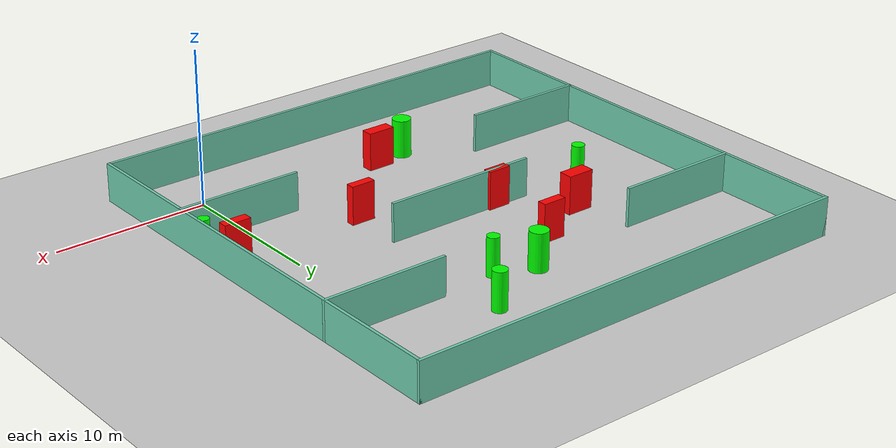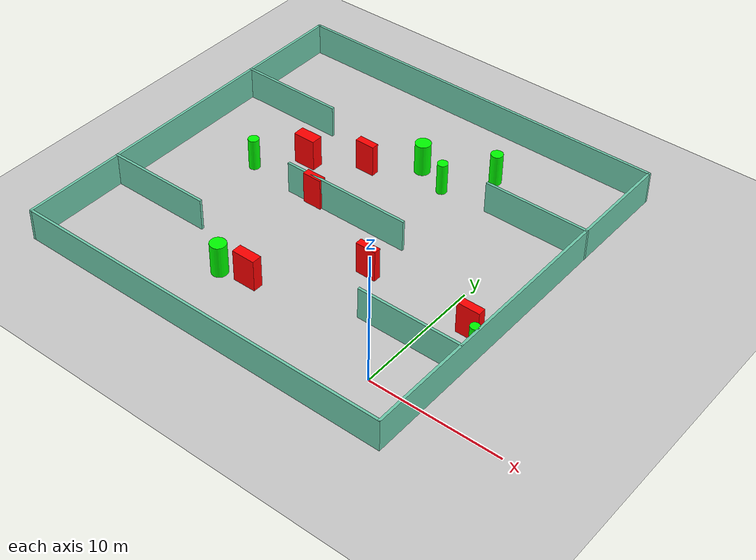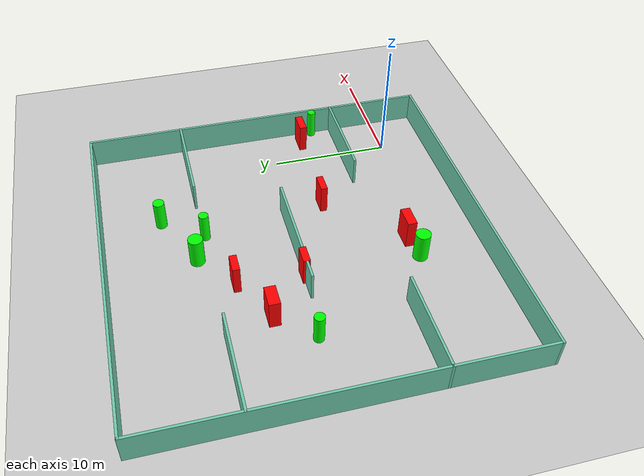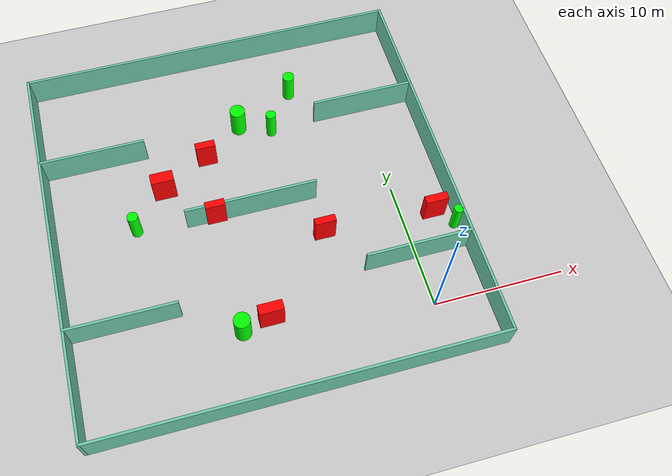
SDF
<sdf version="1.7">
 <world name="default">
  <light name="sun" type="directional">
   <pose>0 0 10 0 -0 0</pose>
   <diffuse>0.8 0.8 0.8 1</diffuse>
   <specular>0.2 0.2 0.2 1</specular>
   <attenuation>
    <range>1000</range>
    <constant>0.9</constant>
    <linear>0.01</linear>
    <quadratic>0.001</quadratic>
   </attenuation>
   <direction>-0.5 0.1 -0.9</direction>
   <spot><inner_angle>0</inner_angle><outer_angle>0</outer_angle><falloff>0</falloff></spot>
  </light>
  <model name="ground_plane">
   <static>1</static>
   <link name="link">
    <collision name="collision">
     <geometry><plane><normal>0 0 1</normal><size>100 100</size></plane></geometry>
     <surface>
      <contact><collide_bitmask>65535</collide_bitmask></contact>
      <friction><ode><mu>100</mu><mu2>50</mu2></ode></friction>
     </surface>
    </collision>
    <visual name="visual">
     <cast_shadows>0</cast_shadows>
     <geometry><plane><normal>0 0 1</normal><size>100 100</size></plane></geometry>
     <material>
      <script><uri>file://media/materials/scripts/gazebo.material</uri><name>Gazebo/Grey</name></script>
     </material>
    </visual>
   </link>
  </model>
  <gravity>0 0 -9.8</gravity>
  <magnetic_field>6e-06 2.3e-05 -4.2e-05</magnetic_field>
  <atmosphere type="adiabatic"/>
  <physics type="ode">
   <max_step_size>0.001</max_step_size>
   <real_time_factor>1</real_time_factor>
   <real_time_update_rate>1000</real_time_update_rate>
  </physics>
  <scene><ambient>0.4 0.4 0.4 1</ambient><background>0.7 0.7 0.7 1</background><shadows>1</shadows></scene>
  <spherical_coordinates>
   <surface_model>EARTH_WGS84</surface_model>
   <latitude_deg>0</latitude_deg>
   <longitude_deg>0</longitude_deg>
   <elevation>0</elevation>
   <heading_deg>0</heading_deg>
  </spherical_coordinates>
  <model name="my_base_walls">
   <link name="Wall_10">
    <collision name="Wall_10_Collision">
     <geometry><box><size>8.2 0.2 2.5</size></box></geometry>
     <pose>0 0 1.25 0 -0 0</pose>
    </collision>
    <visual name="Wall_10_Visual">
     <pose>0 0 1.25 0 -0 0</pose>
     <geometry><box><size>8.2 0.2 2.5</size></box></geometry>
     <material>
      <script><uri>file://media/materials/scripts/gazebo.material</uri><name>Gazebo/Grey</name></script>
      <ambient>0.435294 0.796078 0.67451 1</ambient>
     </material>
     <meta><layer>0</layer></meta>
    </visual>
    <pose>-11 -7 0 0 -0 0</pose>
   </link>
   <link name="Wall_12">
    <collision name="Wall_12_Collision">
     <geometry><box><size>8.2 0.2 2.5</size></box></geometry>
     <pose>0 0 1.25 0 -0 0</pose>
    </collision>
    <visual name="Wall_12_Visual">
     <pose>0 0 1.25 0 -0 0</pose>
     <geometry><box><size>8.2 0.2 2.5</size></box></geometry>
     <material>
      <script><uri>file://media/materials/scripts/gazebo.material</uri><name>Gazebo/Grey</name></script>
      <ambient>0.435294 0.796078 0.67451 1</ambient>
     </material>
     <meta><layer>0</layer></meta>
    </visual>
    <pose>-11 7 0 0 -0 0</pose>
   </link>
   <link name="Wall_14">
    <collision name="Wall_14_Collision">
     <geometry><box><size>8.2 0.2 2.5</size></box></geometry>
     <pose>0 0 1.25 0 -0 0</pose>
    </collision>
    <visual name="Wall_14_Visual">
     <pose>0 0 1.25 0 -0 0</pose>
     <geometry><box><size>8.2 0.2 2.5</size></box></geometry>
     <material>
      <script><uri>file://media/materials/scripts/gazebo.material</uri><name>Gazebo/Grey</name></script>
      <ambient>0.435294 0.796078 0.67451 1</ambient>
     </material>
     <meta><layer>0</layer></meta>
    </visual>
    <pose>11 7 0 0 -0 3.14159</pose>
   </link>
   <link name="Wall_16">
    <collision name="Wall_16_Collision">
     <geometry><box><size>10.2 0.2 2.5</size></box></geometry>
     <pose>0 0 1.25 0 -0 0</pose>
    </collision>
    <visual name="Wall_16_Visual">
     <pose>0 0 1.25 0 -0 0</pose>
     <geometry><box><size>10.2 0.2 2.5</size></box></geometry>
     <material>
      <script><uri>file://media/materials/scripts/gazebo.material</uri><name>Gazebo/Grey</name></script>
      <ambient>0.435294 0.796078 0.67451 1</ambient>
     </material>
     <meta><layer>0</layer></meta>
    </visual>
    <pose>0 0 0 0 -0 3.14159</pose>
   </link>
   <link name="Wall_2">
    <collision name="Wall_2_Collision">
     <geometry><box><size>30.2 0.2 2.5</size></box></geometry>
     <pose>0 0 1.25 0 -0 0</pose>
    </collision>
    <visual name="Wall_2_Visual">
     <pose>0 0 1.25 0 -0 0</pose>
     <geometry><box><size>30.2 0.2 2.5</size></box></geometry>
     <material>
      <script><uri>file://media/materials/scripts/gazebo.material</uri><name>Gazebo/Grey</name></script>
      <ambient>0.435294 0.796078 0.67451 1</ambient>
     </material>
     <meta><layer>0</layer></meta>
    </visual>
    <pose>0 -15 0 0 -0 3.14159</pose>
   </link>
   <link name="Wall_3">
    <collision name="Wall_3_Collision">
     <geometry><box><size>30.2 0.2 2.5</size></box></geometry>
     <pose>0 0 1.25 0 -0 0</pose>
    </collision>
    <visual name="Wall_3_Visual">
     <pose>0 0 1.25 0 -0 0</pose>
     <geometry><box><size>30.2 0.2 2.5</size></box></geometry>
     <material>
      <script><uri>file://media/materials/scripts/gazebo.material</uri><name>Gazebo/Grey</name></script>
      <ambient>0.435294 0.796078 0.67451 1</ambient>
     </material>
     <meta><layer>0</layer></meta>
    </visual>
    <pose>-15 0 0 0 -0 1.5708</pose>
   </link>
   <link name="Wall_4">
    <collision name="Wall_4_Collision">
     <geometry><box><size>30.2 0.2 2.5</size></box></geometry>
     <pose>0 0 1.25 0 -0 0</pose>
    </collision>
    <visual name="Wall_4_Visual">
     <pose>0 0 1.25 0 -0 0</pose>
     <geometry><box><size>30.2 0.2 2.5</size></box></geometry>
     <material>
      <script><uri>file://media/materials/scripts/gazebo.material</uri><name>Gazebo/Grey</name></script>
      <ambient>0.435294 0.796078 0.67451 1</ambient>
     </material>
     <meta><layer>0</layer></meta>
    </visual>
    <pose>0 15 0 0 -0 0</pose>
   </link>
   <link name="Wall_6">
    <collision name="Wall_6_Collision">
     <geometry><box><size>30.2 0.2 2.5</size></box></geometry>
     <pose>0 0 1.25 0 -0 0</pose>
    </collision>
    <visual name="Wall_6_Visual">
     <pose>0 0 1.25 0 -0 0</pose>
     <geometry><box><size>30.2 0.2 2.5</size></box></geometry>
     <material>
      <script><uri>file://media/materials/scripts/gazebo.material</uri><name>Gazebo/Grey</name></script>
      <ambient>0.435294 0.796078 0.67451 1</ambient>
     </material>
     <meta><layer>0</layer></meta>
    </visual>
    <pose>15 0 0 0 -0 1.5708</pose>
   </link>
   <link name="Wall_8">
    <collision name="Wall_8_Collision">
     <geometry><box><size>8.2 0.2 2.5</size></box></geometry>
     <pose>0 0 1.25 0 -0 0</pose>
    </collision>
    <visual name="Wall_8_Visual">
     <pose>0 0 1.25 0 -0 0</pose>
     <geometry><box><size>8.2 0.2 2.5</size></box></geometry>
     <material>
      <script><uri>file://media/materials/scripts/gazebo.material</uri><name>Gazebo/Grey</name></script>
      <ambient>0.435294 0.796078 0.67451 1</ambient>
     </material>
     <meta><layer>0</layer></meta>
    </visual>
    <pose>11 -7 0 0 -0 3.14159</pose>
   </link>
   <static>1</static>
   <pose>-11 11 0 0 -0 0</pose>
  </model>
  <model name="cylinder1">
   <static>1</static>
   <link name="link">
    <inertial>
     <mass>1</mass>
     <inertia><ixx>0.5</ixx><ixy>0</ixy><ixz>0</ixz><iyy>0.5</iyy><iyz>0</iyz><izz>1</izz></inertia>
    </inertial>
    <collision name="collision">
     <geometry><cylinder><radius>0.4158542489716761</radius><length>2.5</length></cylinder></geometry>
    </collision>
    <visual name="visual">
     <geometry><cylinder><radius>0.4158542489716761</radius><length>2.5</length></cylinder></geometry>
     <material>
      <ambient>0 1 0 1</ambient>
      <diffuse>0 1 0 1</diffuse>
      <specular>0.1 0.1 0.1 1</specular>
      <emissive>0 0 0 0</emissive>
     </material>
    </visual>
   </link>
   <pose>-19.891511363780758 11.50236141733927 1.25 0 0 0</pose>
  </model>
  <model name="cylinder2">
   <static>1</static>
   <link name="link">
    <inertial>
     <mass>1</mass>
     <inertia><ixx>0.5</ixx><ixy>0</ixy><ixz>0</ixz><iyy>0.5</iyy><iyz>0</iyz><izz>1</izz></inertia>
    </inertial>
    <collision name="collision">
     <geometry><cylinder><radius>0.6104092179179579</radius><length>2.5</length></cylinder></geometry>
    </collision>
    <visual name="visual">
     <geometry><cylinder><radius>0.6104092179179579</radius><length>2.5</length></cylinder></geometry>
     <material>
      <ambient>0 1 0 1</ambient>
      <diffuse>0 1 0 1</diffuse>
      <specular>0.1 0.1 0.1 1</specular>
      <emissive>0 0 0 0</emissive>
     </material>
    </visual>
   </link>
   <pose>-13.95493690057162 1.5053305153618286 1.25 0 0 0</pose>
  </model>
  <model name="cylinder3">
   <static>1</static>
   <link name="link">
    <inertial>
     <mass>1</mass>
     <inertia><ixx>0.5</ixx><ixy>0</ixy><ixz>0</ixz><iyy>0.5</iyy><iyz>0</iyz><izz>1</izz></inertia>
    </inertial>
    <collision name="collision">
     <geometry><cylinder><radius>0.4628122217576789</radius><length>2.5</length></cylinder></geometry>
    </collision>
    <visual name="visual">
     <geometry><cylinder><radius>0.4628122217576789</radius><length>2.5</length></cylinder></geometry>
     <material>
      <ambient>0 1 0 1</ambient>
      <diffuse>0 1 0 1</diffuse>
      <specular>0.1 0.1 0.1 1</specular>
      <emissive>0 0 0 0</emissive>
     </material>
    </visual>
   </link>
   <pose>-5.404599270384672 21.095572354652166 1.25 0 0 0</pose>
  </model>
  <model name="cylinder4">
   <static>1</static>
   <link name="link">
    <inertial>
     <mass>1</mass>
     <inertia><ixx>0.5</ixx><ixy>0</ixy><ixz>0</ixz><iyy>0.5</iyy><iyz>0</iyz><izz>1</izz></inertia>
    </inertial>
    <collision name="collision">
     <geometry><cylinder><radius>0.5984210286538565</radius><length>2.5</length></cylinder></geometry>
    </collision>
    <visual name="visual">
     <geometry><cylinder><radius>0.5984210286538565</radius><length>2.5</length></cylinder></geometry>
     <material>
      <ambient>0 1 0 1</ambient>
      <diffuse>0 1 0 1</diffuse>
      <specular>0.1 0.1 0.1 1</specular>
      <emissive>0 0 0 0</emissive>
     </material>
    </visual>
   </link>
   <pose>-10.220462470875365 18.818063771508818 1.25 0 0 0</pose>
  </model>
  <model name="cylinder5">
   <static>1</static>
   <link name="link">
    <inertial>
     <mass>1</mass>
     <inertia><ixx>0.5</ixx><ixy>0</ixy><ixz>0</ixz><iyy>0.5</iyy><iyz>0</iyz><izz>1</izz></inertia>
    </inertial>
    <collision name="collision">
     <geometry><cylinder><radius>0.3960145914020373</radius><length>2.5</length></cylinder></geometry>
    </collision>
    <visual name="visual">
     <geometry><cylinder><radius>0.3960145914020373</radius><length>2.5</length></cylinder></geometry>
     <material>
      <ambient>0 1 0 1</ambient>
      <diffuse>0 1 0 1</diffuse>
      <specular>0.1 0.1 0.1 1</specular>
      <emissive>0 0 0 0</emissive>
     </material>
    </visual>
   </link>
   <pose>-7.726448930364381 17.792935063263897 1.25 0 0 0</pose>
  </model>
  <model name="cylinder6">
   <static>1</static>
   <link name="link">
    <inertial>
     <mass>1</mass>
     <inertia><ixx>0.5</ixx><ixy>0</ixy><ixz>0</ixz><iyy>0.5</iyy><iyz>0</iyz><izz>1</izz></inertia>
    </inertial>
    <collision name="collision">
     <geometry><cylinder><radius>0.3502847590897822</radius><length>2.5</length></cylinder></geometry>
    </collision>
    <visual name="visual">
     <geometry><cylinder><radius>0.3502847590897822</radius><length>2.5</length></cylinder></geometry>
     <material>
      <ambient>0 1 0 1</ambient>
      <diffuse>0 1 0 1</diffuse>
      <specular>0.1 0.1 0.1 1</specular>
      <emissive>0 0 0 0</emissive>
     </material>
    </visual>
   </link>
   <pose>3.6496797631166054 5.858253141267491 1.25 0 0 0</pose>
  </model>
  <model name="box1">
   <static>1</static>
   <link name="link">
    <inertial>
     <mass>1</mass>
     <inertia><ixx>0.083</ixx><ixy>0</ixy><ixz>0</ixz><iyy>0.083</iyy><iyz>0</iyz><izz>0.083</izz></inertia>
    </inertial>
    <collision name="collision">
     <geometry><box><size>1.8150080961499797 0.7714218696202062 2.5</size></box></geometry>
    </collision>
    <visual name="visual">
     <geometry><box><size>1.8150080961499797 0.7714218696202062 2.5</size></box></geometry>
     <material>
      <ambient>1 0 0 1</ambient>
      <diffuse>1 0 0 1</diffuse>
      <specular>0.1 0.1 0.1 1</specular>
      <emissive>0 0 0 0</emissive>
     </material>
    </visual>
    <sensor name="my_contact" type="contact">
     <contact><collision>box_collision</collision><topic>__default_topic__</topic></contact>
    </sensor>
   </link>
   <pose>-11.785603031093837 1.9131619620731026 1.25 0 0 0</pose>
  </model>
  <model name="box2">
   <static>1</static>
   <link name="link">
    <inertial>
     <mass>1</mass>
     <inertia><ixx>0.083</ixx><ixy>0</ixy><ixz>0</ixz><iyy>0.083</iyy><iyz>0</iyz><izz>0.083</izz></inertia>
    </inertial>
    <collision name="collision">
     <geometry><box><size>1.7471557500678299 0.6188893575193368 2.5</size></box></geometry>
    </collision>
    <visual name="visual">
     <geometry><box><size>1.7471557500678299 0.6188893575193368 2.5</size></box></geometry>
     <material>
      <ambient>1 0 0 1</ambient>
      <diffuse>1 0 0 1</diffuse>
      <specular>0.1 0.1 0.1 1</specular>
      <emissive>0 0 0 0</emissive>
     </material>
    </visual>
    <sensor name="my_contact" type="contact">
     <contact><collision>box_collision</collision><topic>__default_topic__</topic></contact>
    </sensor>
   </link>
   <pose>2.384854855890488 7.174612363995399 1.25 0 0 0</pose>
  </model>
  <model name="box3">
   <static>1</static>
   <link name="link">
    <inertial>
     <mass>1</mass>
     <inertia><ixx>0.083</ixx><ixy>0</ixy><ixz>0</ixz><iyy>0.083</iyy><iyz>0</iyz><izz>0.083</izz></inertia>
    </inertial>
    <collision name="collision">
     <geometry><box><size>1.5932798986394114 0.548285496065372 2.5</size></box></geometry>
    </collision>
    <visual name="visual">
     <geometry><box><size>1.5932798986394114 0.548285496065372 2.5</size></box></geometry>
     <material>
      <ambient>1 0 0 1</ambient>
      <diffuse>1 0 0 1</diffuse>
      <specular>0.1 0.1 0.1 1</specular>
      <emissive>0 0 0 0</emissive>
     </material>
    </visual>
    <sensor name="my_contact" type="contact">
     <contact><collision>box_collision</collision><topic>__default_topic__</topic></contact>
    </sensor>
   </link>
   <pose>-6.194258568174632 7.556046931457043 1.25 0 0 0</pose>
  </model>
  <model name="box4">
   <static>1</static>
   <link name="link">
    <inertial>
     <mass>1</mass>
     <inertia><ixx>0.083</ixx><ixy>0</ixy><ixz>0</ixz><iyy>0.083</iyy><iyz>0</iyz><izz>0.083</izz></inertia>
    </inertial>
    <collision name="collision">
     <geometry><box><size>1.5089841251203069 0.5610318335517577 2.5</size></box></geometry>
    </collision>
    <visual name="visual">
     <geometry><box><size>1.5089841251203069 0.5610318335517577 2.5</size></box></geometry>
     <material>
      <ambient>1 0 0 1</ambient>
      <diffuse>1 0 0 1</diffuse>
      <specular>0.1 0.1 0.1 1</specular>
      <emissive>0 0 0 0</emissive>
     </material>
    </visual>
    <sensor name="my_contact" type="contact">
     <contact><collision>box_collision</collision><topic>__default_topic__</topic></contact>
    </sensor>
   </link>
   <pose>-13.781497036449176 11.015109205007288 1.25 0 0 0</pose>
  </model>
  <model name="box5">
   <static>1</static>
   <link name="link">
    <inertial>
     <mass>1</mass>
     <inertia><ixx>0.083</ixx><ixy>0</ixy><ixz>0</ixz><iyy>0.083</iyy><iyz>0</iyz><izz>0.083</izz></inertia>
    </inertial>
    <collision name="collision">
     <geometry><box><size>1.543021605589413 0.5798820393088668 2.5</size></box></geometry>
    </collision>
    <visual name="visual">
     <geometry><box><size>1.543021605589413 0.5798820393088668 2.5</size></box></geometry>
     <material>
      <ambient>1 0 0 1</ambient>
      <diffuse>1 0 0 1</diffuse>
      <specular>0.1 0.1 0.1 1</specular>
      <emissive>0 0 0 0</emissive>
     </material>
    </visual>
    <sensor name="my_contact" type="contact">
     <contact><collision>box_collision</collision><topic>__default_topic__</topic></contact>
    </sensor>
   </link>
   <pose>-13.380320156710427 16.34574640502011 1.25 0 0 0</pose>
  </model>
  <model name="box6">
   <static>1</static>
   <link name="link">
    <inertial>
     <mass>1</mass>
     <inertia><ixx>0.083</ixx><ixy>0</ixy><ixz>0</ixz><iyy>0.083</iyy><iyz>0</iyz><izz>0.083</izz></inertia>
    </inertial>
    <collision name="collision">
     <geometry><box><size>1.758416606694074 0.8992083805068478 2.5</size></box></geometry>
    </collision>
    <visual name="visual">
     <geometry><box><size>1.758416606694074 0.8992083805068478 2.5</size></box></geometry>
     <material>
      <ambient>1 0 0 1</ambient>
      <diffuse>1 0 0 1</diffuse>
      <specular>0.1 0.1 0.1 1</specular>
      <emissive>0 0 0 0</emissive>
     </material>
    </visual>
    <sensor name="my_contact" type="contact">
     <contact><collision>box_collision</collision><topic>__default_topic__</topic></contact>
    </sensor>
   </link>
   <pose>-17.17930852114324 14.305459173684998 1.25 0 0 0</pose>
  </model>
 </world>
</sdf>
